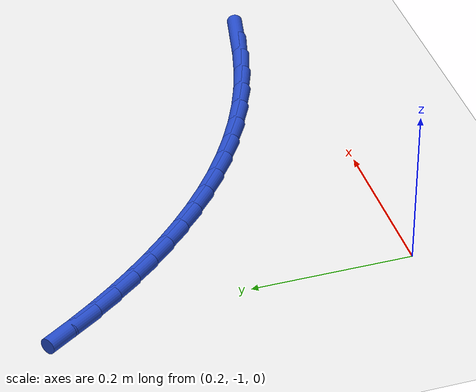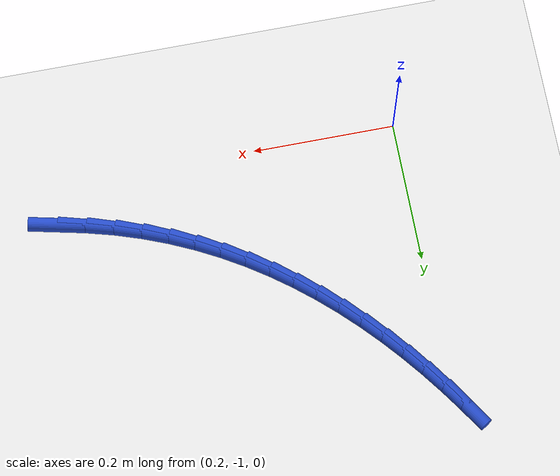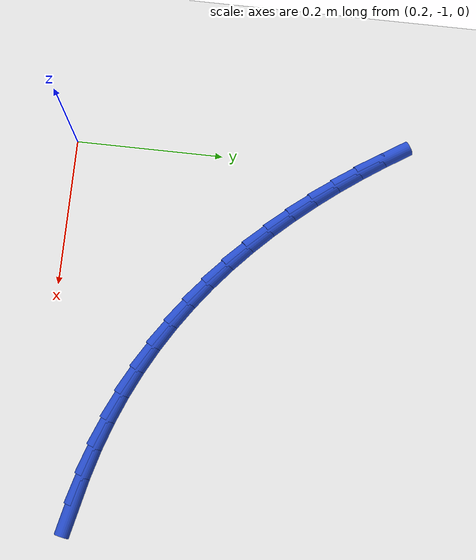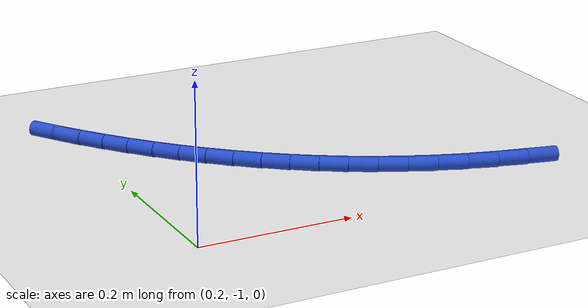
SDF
<sdf version="1.6">
 <world name="default">
  <model name="ground_plane">
   <static>1</static>
   <link name="link">
    <collision name="collision">
     <geometry><plane><normal>0 0 1</normal><size>100 100</size></plane></geometry>
     <surface><friction><ode><mu>100</mu><mu2>50</mu2></ode></friction></surface>
    </collision>
    <visual name="visual">
     <cast_shadows>0</cast_shadows>
     <geometry><plane><normal>0 0 1</normal><size>100 100</size></plane></geometry>
     <material>
      <script><uri>file://media/materials/scripts/gazebo.material</uri><name>Gazebo/WhiteGlow</name></script>
     </material>
    </visual>
   </link>
  </model>
  <model name="line">
   <link name="link_186">
    <pose>0.6914965491333963 -0.9412974920708749 0.01 0 1.57 -0.22074271239976642</pose>
    <collision name="collision">
     <geometry><cylinder><radius>0.01</radius><length>0.08</length></cylinder></geometry>
    </collision>
    <visual name="visual">
     <material>
      <script><name>Gazebo/Blue</name><uri>file://media/materials/scripts/gazebo.material</uri></script>
     </material>
     <geometry><cylinder><radius>0.01</radius><length>0.08</length></cylinder></geometry>
    </visual>
   </link>
   <link name="link_187">
    <pose>0.6514146557707916 -0.9323031391124343 0.01 0 1.57 -0.2685931959722798</pose>
    <collision name="collision">
     <geometry><cylinder><radius>0.01</radius><length>0.08</length></cylinder></geometry>
    </collision>
    <visual name="visual">
     <material>
      <script><name>Gazebo/Blue</name><uri>file://media/materials/scripts/gazebo.material</uri></script>
     </material>
     <geometry><cylinder><radius>0.01</radius><length>0.08</length></cylinder></geometry>
    </visual>
   </link>
   <link name="link_188">
    <pose>0.6125550270983687 -0.921607253025198 0.01 0 1.57 -0.3248980038529024</pose>
    <collision name="collision">
     <geometry><cylinder><radius>0.01</radius><length>0.08</length></cylinder></geometry>
    </collision>
    <visual name="visual">
     <material>
      <script><name>Gazebo/Blue</name><uri>file://media/materials/scripts/gazebo.material</uri></script>
     </material>
     <geometry><cylinder><radius>0.01</radius><length>0.08</length></cylinder></geometry>
    </visual>
   </link>
   <link name="link_189">
    <pose>0.5751564318616612 -0.9090101277206494 0.01 0 1.57 -0.3810419201451587</pose>
    <collision name="collision">
     <geometry><cylinder><radius>0.01</radius><length>0.08</length></cylinder></geometry>
    </collision>
    <visual name="visual">
     <material>
      <script><name>Gazebo/Blue</name><uri>file://media/materials/scripts/gazebo.material</uri></script>
     </material>
     <geometry><cylinder><radius>0.01</radius><length>0.08</length></cylinder></geometry>
    </visual>
   </link>
   <link name="link_190">
    <pose>0.5391829050034207 -0.8945983643557581 0.01 0 1.57 -0.43663581548418995</pose>
    <collision name="collision">
     <geometry><cylinder><radius>0.01</radius><length>0.08</length></cylinder></geometry>
    </collision>
    <visual name="visual">
     <material>
      <script><name>Gazebo/Blue</name><uri>file://media/materials/scripts/gazebo.material</uri></script>
     </material>
     <geometry><cylinder><radius>0.01</radius><length>0.08</length></cylinder></geometry>
    </visual>
   </link>
   <link name="link_191">
    <pose>0.5045984562326786 -0.8784585903842154 0.01 0 1.57 -0.4913096626717552</pose>
    <collision name="collision">
     <geometry><cylinder><radius>0.01</radius><length>0.08</length></cylinder></geometry>
    </collision>
    <visual name="visual">
     <material>
      <script><name>Gazebo/Blue</name><uri>file://media/materials/scripts/gazebo.material</uri></script>
     </material>
     <geometry><cylinder><radius>0.01</radius><length>0.08</length></cylinder></geometry>
    </visual>
   </link>
   <link name="link_192">
    <pose>0.47136709525846365 -0.8606774332597096 0.01 0 1.57 -0.5447249143243584</pose>
    <collision name="collision">
     <geometry><cylinder><radius>0.01</radius><length>0.08</length></cylinder></geometry>
    </collision>
    <visual name="visual">
     <material>
      <script><name>Gazebo/Blue</name><uri>file://media/materials/scripts/gazebo.material</uri></script>
     </material>
     <geometry><cylinder><radius>0.01</radius><length>0.08</length></cylinder></geometry>
    </visual>
   </link>
   <link name="link_193">
    <pose>0.43945283178980593 -0.8413415204359319 0.01 0 1.57 -0.5965847590969812</pose>
    <collision name="collision">
     <geometry><cylinder><radius>0.01</radius><length>0.08</length></cylinder></geometry>
    </collision>
    <visual name="visual">
     <material>
      <script><name>Gazebo/Blue</name><uri>file://media/materials/scripts/gazebo.material</uri></script>
     </material>
     <geometry><cylinder><radius>0.01</radius><length>0.08</length></cylinder></geometry>
    </visual>
   </link>
   <link name="link_194">
    <pose>0.4088196755357349 -0.8205374793665712 0.01 0 1.57 -0.6466408153575373</pose>
    <collision name="collision">
     <geometry><cylinder><radius>0.01</radius><length>0.08</length></cylinder></geometry>
    </collision>
    <visual name="visual">
     <material>
      <script><name>Gazebo/Blue</name><uri>file://media/materials/scripts/gazebo.material</uri></script>
     </material>
     <geometry><cylinder><radius>0.01</radius><length>0.08</length></cylinder></geometry>
    </visual>
   </link>
   <link name="link_195">
    <pose>0.3794316362052798 -0.7983519375053173 0.01 0 1.57 -0.694696135454836</pose>
    <collision name="collision">
     <geometry><cylinder><radius>0.01</radius><length>0.08</length></cylinder></geometry>
    </collision>
    <visual name="visual">
     <material>
      <script><name>Gazebo/Blue</name><uri>file://media/materials/scripts/gazebo.material</uri></script>
     </material>
     <geometry><cylinder><radius>0.01</radius><length>0.08</length></cylinder></geometry>
    </visual>
   </link>
   <link name="link_196">
    <pose>0.3512527235074715 -0.7748715223058609 0.01 0 1.57 -0.7406048459553498</pose>
    <collision name="collision">
     <geometry><cylinder><radius>0.01</radius><length>0.08</length></cylinder></geometry>
    </collision>
    <visual name="visual">
     <material>
      <script><name>Gazebo/Blue</name><uri>file://media/materials/scripts/gazebo.material</uri></script>
     </material>
     <geometry><cylinder><radius>0.01</radius><length>0.08</length></cylinder></geometry>
    </visual>
   </link>
   <link name="link_197">
    <pose>0.3242469471513393 -0.7501828612218914 0.01 0 1.57 -0.7842690612929331</pose>
    <collision name="collision">
     <geometry><cylinder><radius>0.01</radius><length>0.08</length></cylinder></geometry>
    </collision>
    <visual name="visual">
     <material>
      <script><name>Gazebo/Blue</name><uri>file://media/materials/scripts/gazebo.material</uri></script>
     </material>
     <geometry><cylinder><radius>0.01</radius><length>0.08</length></cylinder></geometry>
    </visual>
   </link>
   <link name="link_198">
    <pose>0.29837831684591276 -0.7243725817070985 0.01 0 1.57 -0.8256338565022793</pose>
    <collision name="collision">
     <geometry><cylinder><radius>0.01</radius><length>0.08</length></cylinder></geometry>
    </collision>
    <visual name="visual">
     <material>
      <script><name>Gazebo/Blue</name><uri>file://media/materials/scripts/gazebo.material</uri></script>
     </material>
     <geometry><cylinder><radius>0.01</radius><length>0.08</length></cylinder></geometry>
    </visual>
   </link>
   <link name="link_199">
    <pose>0.27361084230022115 -0.6975273112151718 0.01 0 1.57 -0.8646810875762857</pose>
    <collision name="collision">
     <geometry><cylinder><radius>0.01</radius><length>0.08</length></cylinder></geometry>
    </collision>
    <visual name="visual">
     <material>
      <script><name>Gazebo/Blue</name><uri>file://media/materials/scripts/gazebo.material</uri></script>
     </material>
     <geometry><cylinder><radius>0.01</radius><length>0.08</length></cylinder></geometry>
    </visual>
   </link>
   <link name="link_200">
    <pose>0.24990853322329526 -0.6697336771998019 0.01 0 1.57 -0.9014227482541975</pose>
    <collision name="collision">
     <geometry><cylinder><radius>0.01</radius><length>0.08</length></cylinder></geometry>
    </collision>
    <visual name="visual">
     <material>
      <script><name>Gazebo/Blue</name><uri>file://media/materials/scripts/gazebo.material</uri></script>
     </material>
     <geometry><cylinder><radius>0.01</radius><length>0.08</length></cylinder></geometry>
    </visual>
   </link>
   <link name="link_201">
    <pose>0.22723539932416434 -0.6410783071146785 0.01 0 1.57 -0.9358943981557635</pose>
    <collision name="collision">
     <geometry><cylinder><radius>0.01</radius><length>0.08</length></cylinder></geometry>
    </collision>
    <visual name="visual">
     <material>
      <script><name>Gazebo/Blue</name><uri>file://media/materials/scripts/gazebo.material</uri></script>
     </material>
     <geometry><cylinder><radius>0.01</radius><length>0.08</length></cylinder></geometry>
    </visual>
   </link>
   <link name="link_202">
    <pose>0.2055554503118581 -0.6116478284134913 0.01 0 1.57 -0.968149030195892</pose>
    <collision name="collision">
     <geometry><cylinder><radius>0.01</radius><length>0.08</length></cylinder></geometry>
    </collision>
    <visual name="visual">
     <material>
      <script><name>Gazebo/Blue</name><uri>file://media/materials/scripts/gazebo.material</uri></script>
     </material>
     <geometry><cylinder><radius>0.01</radius><length>0.08</length></cylinder></geometry>
    </visual>
   </link>
   <link name="link_203">
    <pose>0.18483269589540574 -0.5815288685499294 0.01 0 1.57 -0.9982515929632413</pose>
    <collision name="collision">
     <geometry><cylinder><radius>0.01</radius><length>0.08</length></cylinder></geometry>
    </collision>
    <visual name="visual">
     <material>
      <script><name>Gazebo/Blue</name><uri>file://media/materials/scripts/gazebo.material</uri></script>
     </material>
     <geometry><cylinder><radius>0.01</radius><length>0.08</length></cylinder></geometry>
    </visual>
   </link>
  </model>
 </world>
</sdf>
